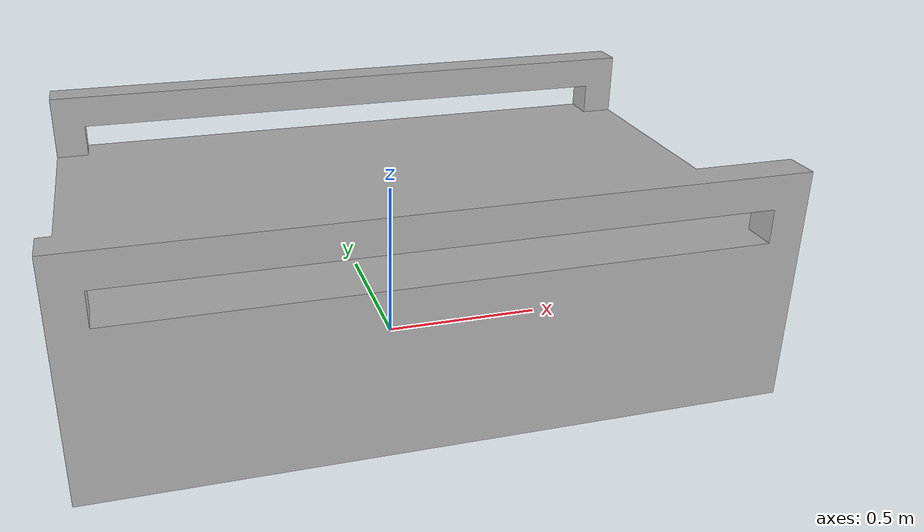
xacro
<?xml version="1.0" ?>
<robot name="conveyor2" xmlns:xacro="http://www.ros.org/wiki/xacro">

<xacro:include filename="$(find conveyor2_description)/urdf/materials.xacro" />
<xacro:include filename="$(find conveyor2_description)/urdf/conveyor2.trans" />
<xacro:include filename="$(find conveyor2_description)/urdf/conveyor2.gazebo" />
<link name="base_link">
  <inertial>
    <origin xyz="-1.6057285769232396e-16 -3.211457153846479e-16 0.381896551724138" rpy="0 0 0"/>
    <mass value="3642.399999999998"/>
    <inertia ixx="958.494925" iyy="1325.246925" izz="2097.310667" ixy="-0.0" iyz="-0.0" ixz="-0.0"/>
  </inertial>
  <visual>
    <origin xyz="0 0 0" rpy="0 0 0"/>
    <geometry>
      <mesh filename="package://conveyor2_description/meshes/base_link.stl" scale="0.001 0.001 0.001"/>
    </geometry>
    <material name="silver"/>
  </visual>
  <collision>
    <origin xyz="0 0 0" rpy="0 0 0"/>
    <geometry>
      <mesh filename="package://conveyor2_description/meshes/base_link.stl" scale="0.001 0.001 0.001"/>
    </geometry>
  </collision>
</link>

</robot>

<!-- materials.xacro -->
<robot name="conveyor2" xmlns:xacro="http://www.ros.org/wiki/xacro" >

<material name="silver">
  <color rgba="0.700 0.700 0.700 1.000"/>
</material>

</robot>

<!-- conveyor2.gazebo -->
<robot name="conveyor2" xmlns:xacro="http://www.ros.org/wiki/xacro" >

<xacro:property name="body_color" value="Gazebo/Silver" />

<gazebo>
  <plugin name="control" filename="libgazebo_ros_control.so"/>
</gazebo>
<gazebo reference="base_link">
  <material>${body_color}</material>
  <mu1>0.2</mu1>
  <mu2>0.2</mu2>
  <selfCollide>false</selfCollide>
  <gravity>true</gravity>
</gazebo>

</robot>
